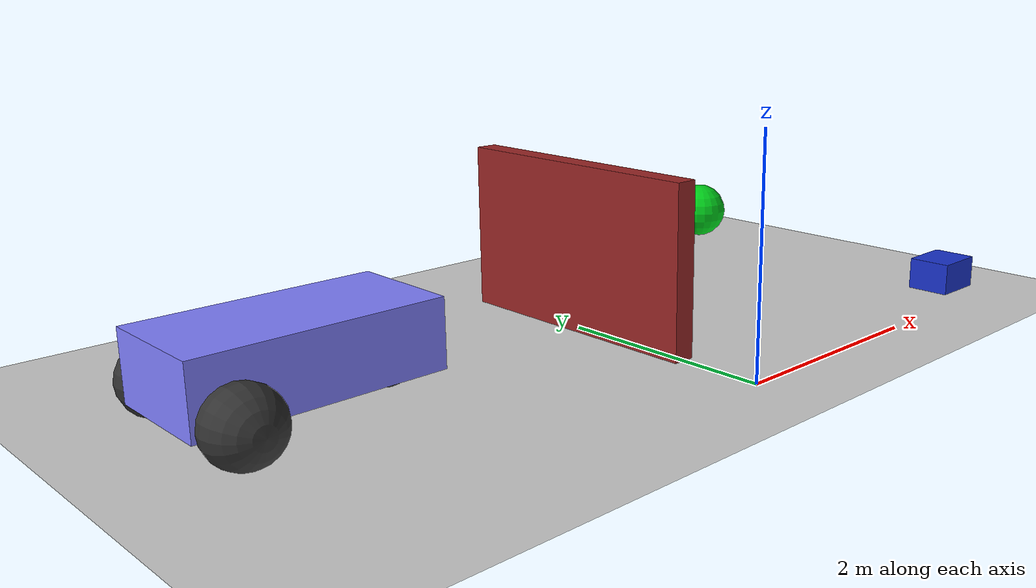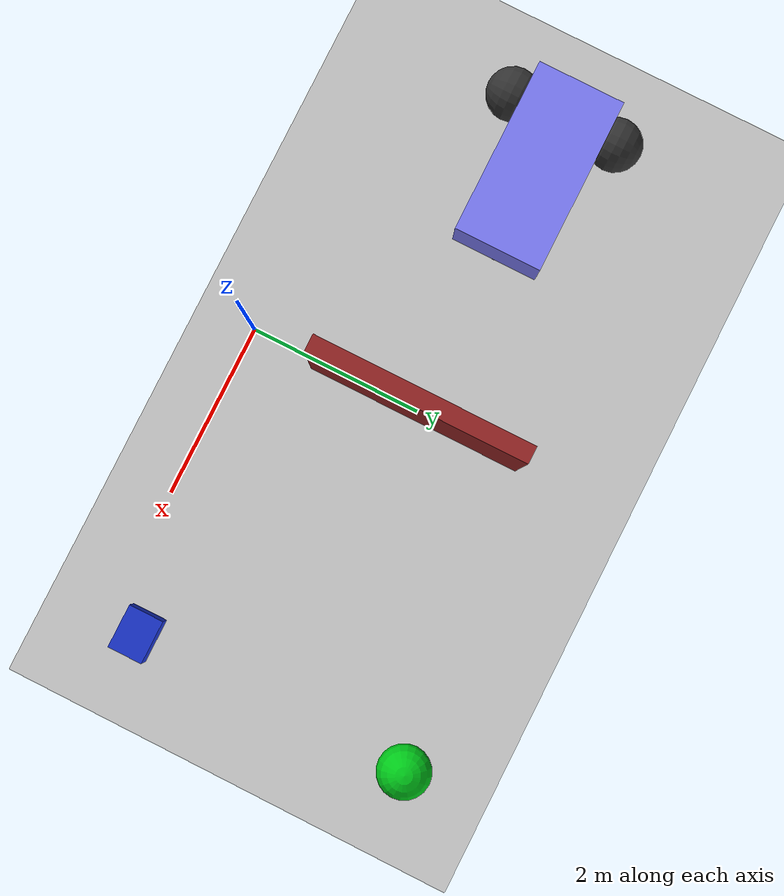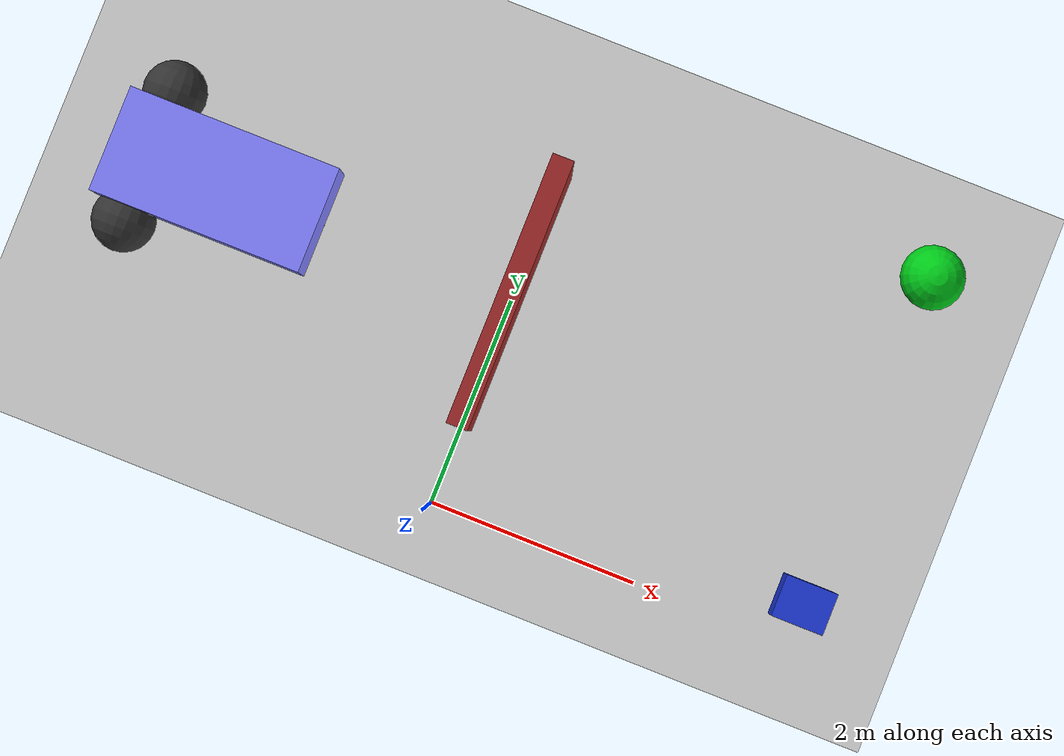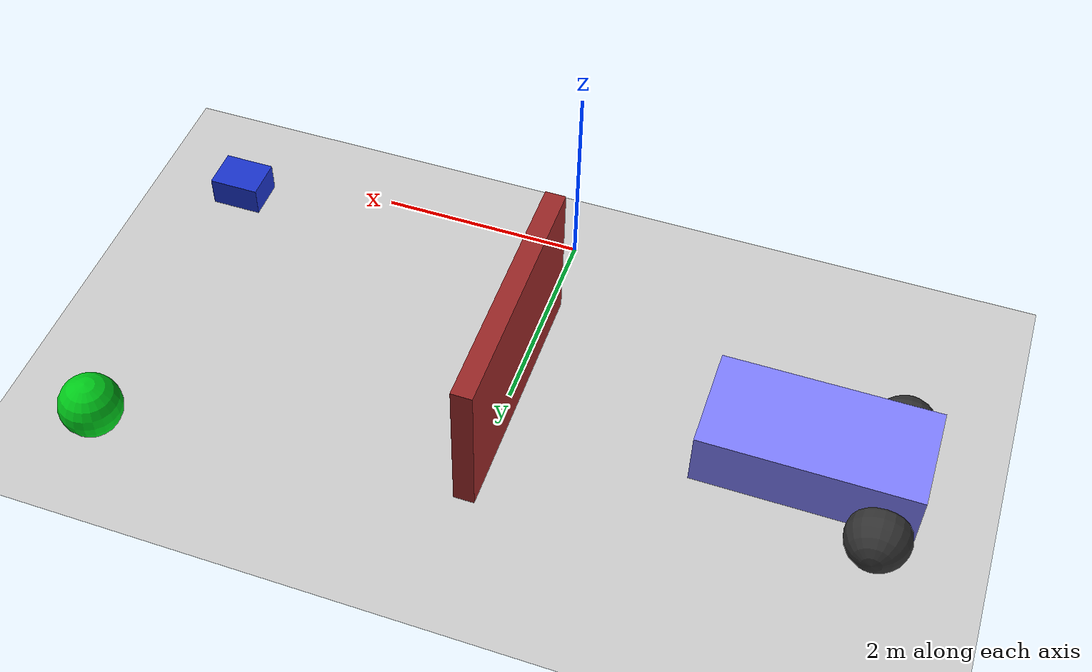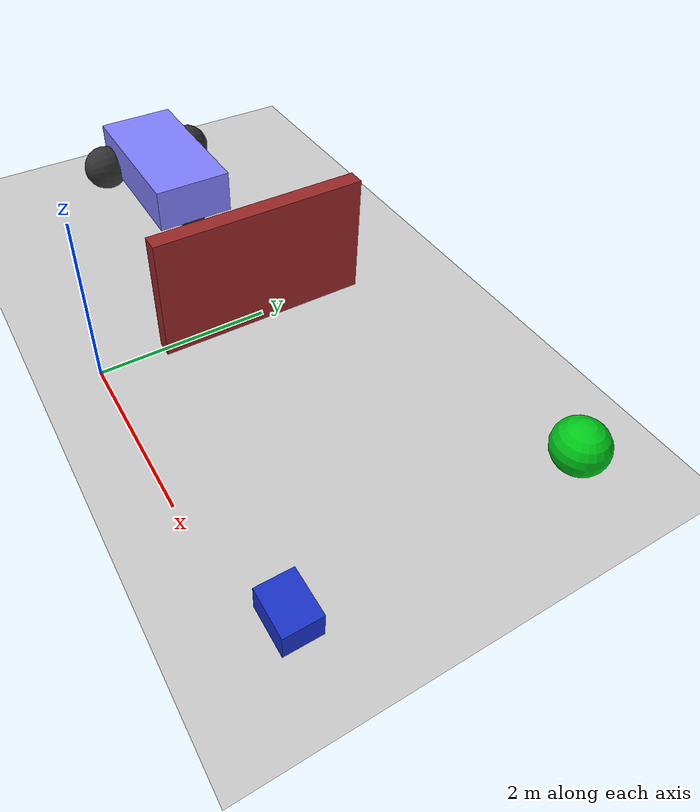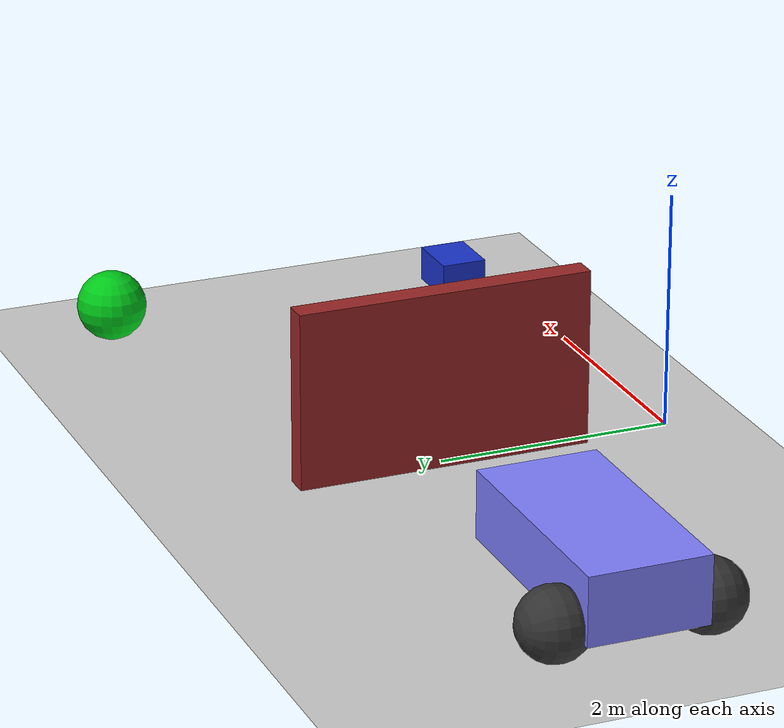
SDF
<sdf version="1.6">
 <world name="dronions_diff_drive_camera">
  <physics name="1ms" type="ignored">
   <max_step_size>0.001</max_step_size>
   <real_time_factor>1.0</real_time_factor>
  </physics>
  <plugin filename="gz-sim-physics-system" name="gz::sim::systems::Physics"/>
  <plugin filename="gz-sim-sensors-system" name="gz::sim::systems::Sensors">
   <render_engine>ogre2</render_engine>
  </plugin>
  <plugin filename="gz-sim-user-commands-system" name="gz::sim::systems::UserCommands"/>
  <plugin filename="gz-sim-scene-broadcaster-system" name="gz::sim::systems::SceneBroadcaster"/>
  <light type="directional" name="sun">
   <pose>0 0 10 0 0 0</pose>
   <diffuse>1 1 1 1</diffuse>
   <specular>0.5 0.5 0.5 1</specular>
   <attenuation>
    <range>1000</range>
    <constant>0.9</constant>
    <linear>0.01</linear>
    <quadratic>0.001</quadratic>
   </attenuation>
   <direction>-0.5 0.1 -0.9</direction>
  </light>
  <model name="ground_plane">
   <static>true</static>
   <link name="link">
    <collision name="collision">
     <geometry><plane><normal>0 0 1</normal><size>100 100</size></plane></geometry>
    </collision>
    <visual name="visual">
     <geometry><plane><normal>0 0 1</normal><size>100 100</size></plane></geometry>
     <material>
      <ambient>0.8 0.8 0.8 1</ambient>
      <diffuse>0.8 0.8 0.8 1</diffuse>
      <specular>0.8 0.8 0.8 1</specular>
     </material>
    </visual>
   </link>
  </model>
  <model name="vehicle_blue">
   <pose>-3 2 0.325 0 0 3.14159</pose>
   <link name="chassis">
    <pose>-0.151427 -0 0.175 0 -0 0</pose>
    <inertial>
     <mass>1.14395</mass>
     <inertia>
      <ixx>0.126164</ixx>
      <ixy>0</ixy>
      <ixz>0</ixz>
      <iyy>0.416519</iyy>
      <iyz>0</iyz>
      <izz>0.481014</izz>
     </inertia>
    </inertial>
    <visual name="visual">
     <geometry><box><size>2.01142 1 0.568726</size></box></geometry>
     <material>
      <ambient>0.5 0.5 1.0 1</ambient>
      <diffuse>0.5 0.5 1.0 1</diffuse>
      <specular>0.0 0.0 1.0 1</specular>
     </material>
    </visual>
    <collision name="collision"><geometry><box><size>2.01142 1 0.568726</size></box></geometry></collision>
    <sensor name="camera" type="camera">
     <pose>1.0 0 0.2 0 0 0</pose>
     <camera>
      <horizontal_fov>1.047</horizontal_fov>
      <image><width>640</width><height>480</height></image>
      <clip><near>0.1</near><far>100</far></clip>
     </camera>
     <always_on>1</always_on>
     <update_rate>30</update_rate>
     <visualize>true</visualize>
     <topic>camera</topic>
    </sensor>
    <sensor name="lidar" type="gpu_lidar">
     <pose>1.0 0 0.1 0 0 0</pose>
     <update_rate>10</update_rate>
     <lidar>
      <scan>
       <horizontal>
        <samples>20</samples>
        <resolution>1</resolution>
        <min_angle>-0.35</min_angle>
        <max_angle>0.35</max_angle>
       </horizontal>
      </scan>
      <range><min>0.08</min><max>6.0</max><resolution>0.01</resolution></range>
     </lidar>
     <always_on>1</always_on>
     <visualize>true</visualize>
     <topic>lidar</topic>
    </sensor>
   </link>
   <link name="left_wheel">
    <pose>0.554283 0.625029 -0.025 -1.5707 0 0</pose>
    <inertial>
     <mass>2</mass>
     <inertia><ixx>0.145833</ixx><ixy>0</ixy><ixz>0</ixz><iyy>0.145833</iyy><iyz>0</iyz><izz>0.125</izz></inertia>
    </inertial>
    <visual name="visual">
     <geometry><sphere><radius>0.3</radius></sphere></geometry>
     <material>
      <ambient>0.2 0.2 0.2 1</ambient>
      <diffuse>0.2 0.2 0.2 1</diffuse>
      <specular>0.2 0.2 0.2 1</specular>
     </material>
    </visual>
    <collision name="collision">
     <geometry><sphere><radius>0.3</radius></sphere></geometry>
     <surface>
      <friction>
       <ode><mu>1</mu><mu2>1</mu2><slip1>0.035</slip1><slip2>0</slip2><fdir1>0 0 1</fdir1></ode>
       <bullet><friction>1</friction><friction2>1</friction2><rolling_friction>0.1</rolling_friction></bullet>
      </friction>
     </surface>
    </collision>
   </link>
   <link name="right_wheel">
    <pose>0.554282 -0.625029 -0.025 -1.5707 0 0</pose>
    <inertial>
     <mass>2</mass>
     <inertia><ixx>0.145833</ixx><ixy>0</ixy><ixz>0</ixz><iyy>0.145833</iyy><iyz>0</iyz><izz>0.125</izz></inertia>
    </inertial>
    <visual name="visual">
     <geometry><sphere><radius>0.3</radius></sphere></geometry>
     <material>
      <ambient>0.2 0.2 0.2 1</ambient>
      <diffuse>0.2 0.2 0.2 1</diffuse>
      <specular>0.2 0.2 0.2 1</specular>
     </material>
    </visual>
    <collision name="collision">
     <geometry><sphere><radius>0.3</radius></sphere></geometry>
     <surface>
      <friction>
       <ode><mu>1</mu><mu2>1</mu2><slip1>0.035</slip1><slip2>0</slip2><fdir1>0 0 1</fdir1></ode>
       <bullet><friction>1</friction><friction2>1</friction2><rolling_friction>0.1</rolling_friction></bullet>
      </friction>
     </surface>
    </collision>
   </link>
   <link name="caster">
    <pose>-0.957138 -0 -0.125 0 -0 0</pose>
    <inertial>
     <mass>1</mass>
     <inertia><ixx>0.1</ixx><ixy>0</ixy><ixz>0</ixz><iyy>0.1</iyy><iyz>0</iyz><izz>0.1</izz></inertia>
    </inertial>
    <visual name="visual">
     <geometry><sphere><radius>0.2</radius></sphere></geometry>
     <material>
      <ambient>0.2 0.2 0.2 1</ambient>
      <diffuse>0.2 0.2 0.2 1</diffuse>
      <specular>0.2 0.2 0.2 1</specular>
     </material>
    </visual>
    <collision name="collision"><geometry><sphere><radius>0.2</radius></sphere></geometry></collision>
   </link>
   <joint name="left_wheel_joint" type="revolute">
    <parent>chassis</parent>
    <child>left_wheel</child>
    <axis><xyz>0 0 1</xyz><limit><lower>-1.79769e+308</lower><upper>1.79769e+308</upper></limit></axis>
   </joint>
   <joint name="right_wheel_joint" type="revolute">
    <parent>chassis</parent>
    <child>right_wheel</child>
    <axis><xyz>0 0 1</xyz><limit><lower>-1.79769e+308</lower><upper>1.79769e+308</upper></limit></axis>
   </joint>
   <joint name="caster_wheel" type="ball"><parent>chassis</parent><child>caster</child></joint>
   <plugin filename="gz-sim-diff-drive-system" name="gz::sim::systems::DiffDrive">
    <left_joint>left_wheel_joint</left_joint>
    <right_joint>right_wheel_joint</right_joint>
    <wheel_separation>1.25</wheel_separation>
    <wheel_radius>0.3</wheel_radius>
    <odom_publish_frequency>1</odom_publish_frequency>
    <max_linear_acceleration>1</max_linear_acceleration>
    <min_linear_acceleration>-1</min_linear_acceleration>
    <max_angular_acceleration>2</max_angular_acceleration>
    <min_angular_acceleration>-2</min_angular_acceleration>
    <max_linear_velocity>0.5</max_linear_velocity>
    <min_linear_velocity>-0.5</min_linear_velocity>
    <max_angular_velocity>1</max_angular_velocity>
    <min_angular_velocity>-1</min_angular_velocity>
   </plugin>
  </model>
  <model name="obstacle_wall">
   <static>true</static>
   <pose>0 2 0.75 0 0 0</pose>
   <link name="link">
    <collision name="collision"><geometry><box><size>0.2 2.5 1.5</size></box></geometry></collision>
    <visual name="visual">
     <geometry><box><size>0.2 2.5 1.5</size></box></geometry>
     <material>
      <ambient>0.6 0.15 0.15 1</ambient>
      <diffuse>0.6 0.15 0.15 1</diffuse>
      <specular>0.2 0.2 0.2 1</specular>
     </material>
    </visual>
   </link>
  </model>
  <model name="distractor_sphere">
   <static>true</static>
   <pose>3.5 3.6 0.3 0 0 0</pose>
   <link name="link">
    <collision name="collision"><geometry><sphere><radius>0.3</radius></sphere></geometry></collision>
    <visual name="visual">
     <geometry><sphere><radius>0.3</radius></sphere></geometry>
     <material>
      <ambient>0 0.8 0.1 1</ambient>
      <diffuse>0 0.8 0.1 1</diffuse>
      <specular>0.3 0.3 0.3 1</specular>
     </material>
    </visual>
   </link>
  </model>
  <model name="distractor_box_blue">
   <static>true</static>
   <pose>3.5 0.4 0.15 0 0 0</pose>
   <link name="link">
    <collision name="collision"><geometry><box><size>0.5 0.4 0.3</size></box></geometry></collision>
    <visual name="visual">
     <geometry><box><size>0.5 0.4 0.3</size></box></geometry>
     <material>
      <ambient>0.1 0.2 0.8 1</ambient>
      <diffuse>0.1 0.2 0.8 1</diffuse>
      <specular>0.3 0.3 0.3 1</specular>
     </material>
    </visual>
   </link>
  </model>
 </world>
</sdf>
